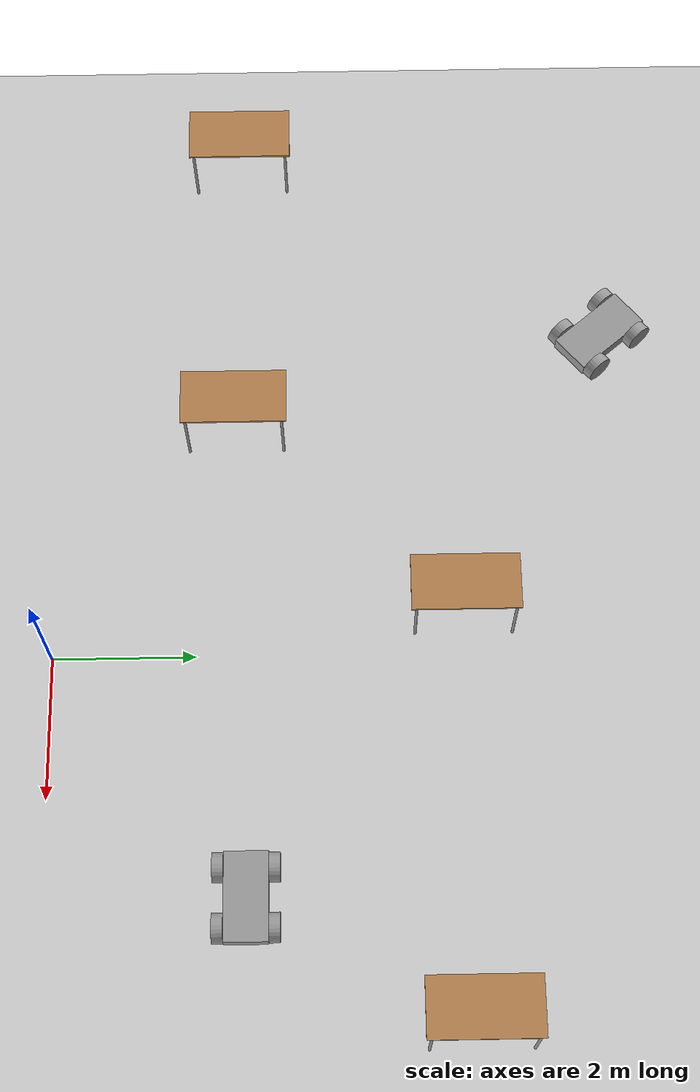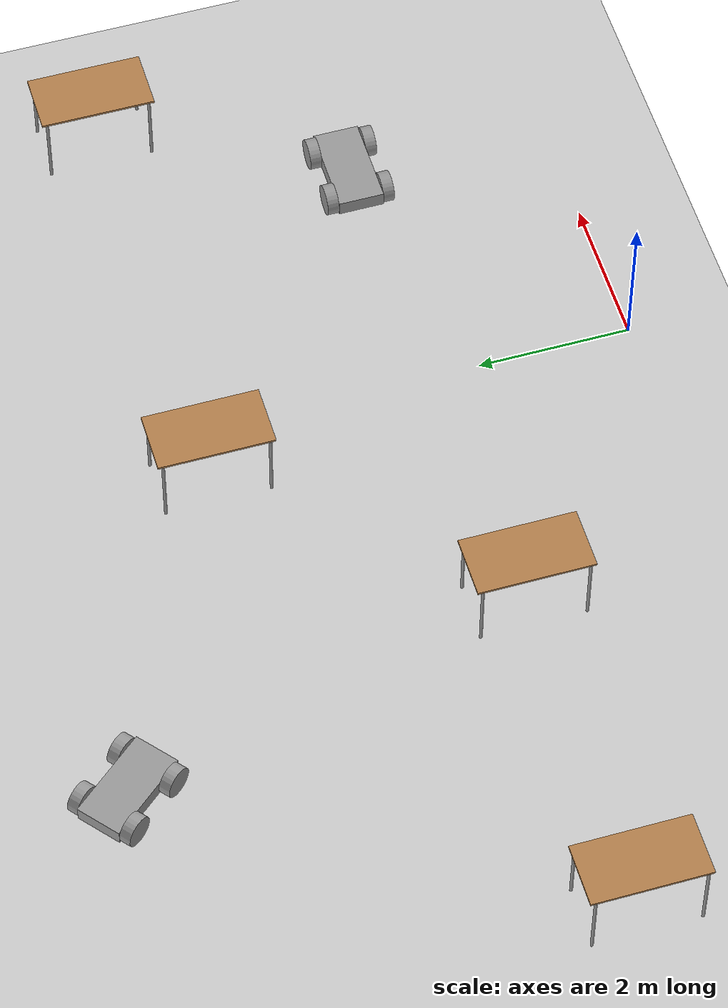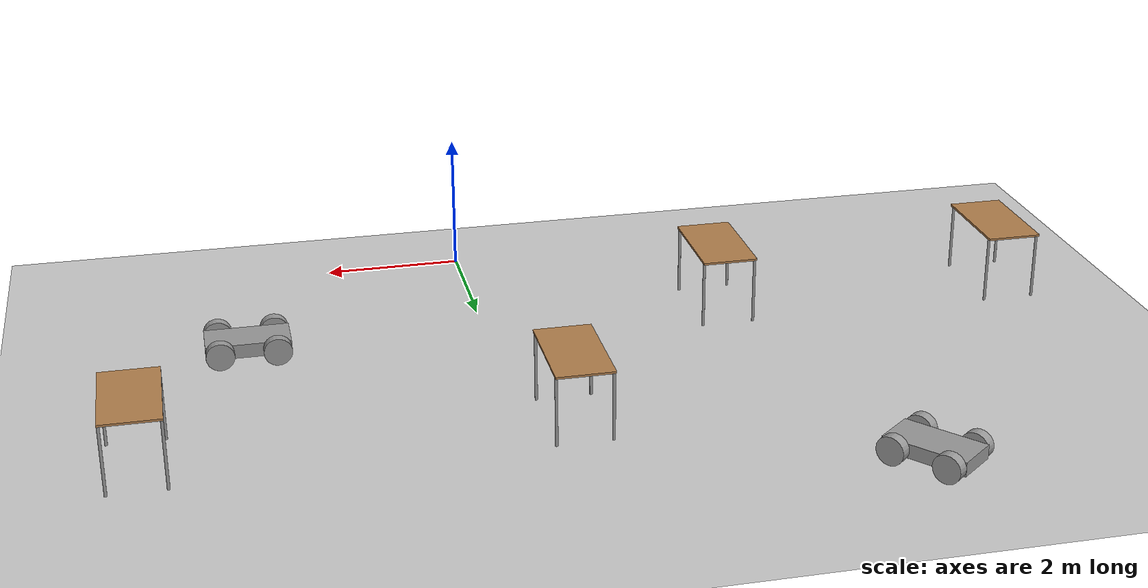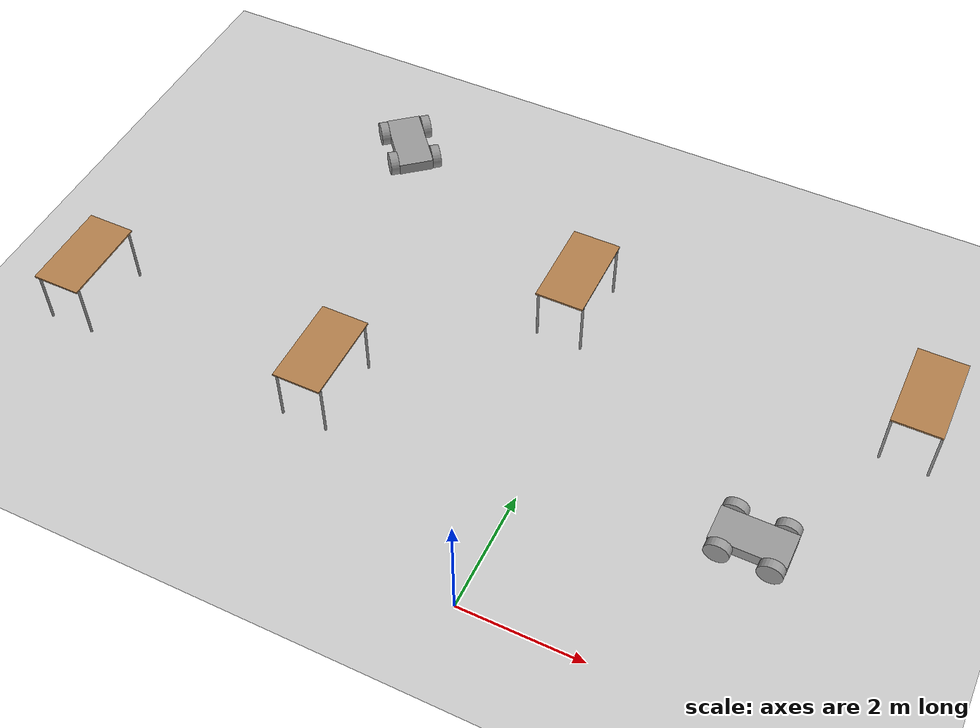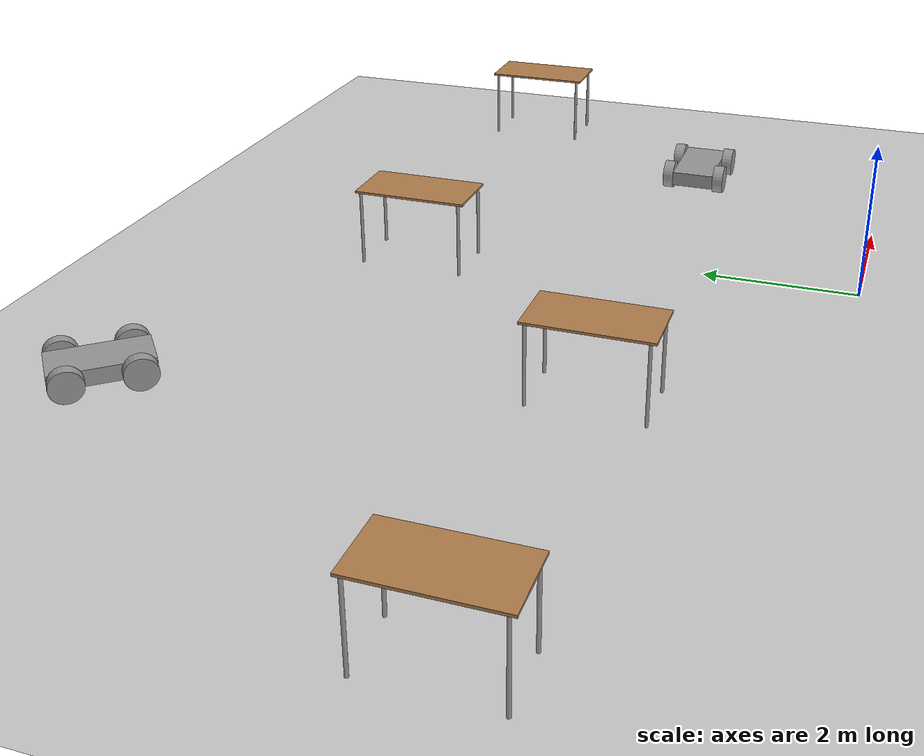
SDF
<sdf version="1.6">
 <world name="default">
  <model name="ground_plane">
   <static>1</static>
   <link name="link">
    <collision name="collision">
     <geometry><plane><normal>0 0 1</normal><size>100 100</size></plane></geometry>
     <surface>
      <contact><collide_bitmask>65535</collide_bitmask></contact>
      <friction><ode><mu>100</mu><mu2>50</mu2></ode></friction>
     </surface>
    </collision>
    <visual name="visual">
     <cast_shadows>0</cast_shadows>
     <geometry><plane><normal>0 0 1</normal><size>100 100</size></plane></geometry>
     <material>
      <script><uri>file://media/materials/scripts/gazebo.material</uri><name>Gazebo/Grey</name></script>
     </material>
    </visual>
   </link>
  </model>
  <model name="table">
   <static>1</static>
   <link name="link">
    <collision name="surface">
     <pose>0 0 1 0 -0 0</pose>
     <geometry><box><size>1.5 0.8 0.03</size></box></geometry>
     <surface><friction><ode><mu>0.6</mu><mu2>0.6</mu2></ode></friction></surface>
    </collision>
    <visual name="visual1">
     <pose>0 0 1 0 -0 0</pose>
     <geometry><box><size>1.5 0.8 0.03</size></box></geometry>
     <material>
      <script><uri>file://media/materials/scripts/gazebo.material</uri><name>Gazebo/Wood</name></script>
     </material>
    </visual>
    <collision name="front_left_leg">
     <pose>0.68 0.38 0.5 0 -0 0</pose>
     <geometry><cylinder><radius>0.02</radius><length>1</length></cylinder></geometry>
    </collision>
    <visual name="front_left_leg">
     <pose>0.68 0.38 0.5 0 -0 0</pose>
     <geometry><cylinder><radius>0.02</radius><length>1</length></cylinder></geometry>
     <material>
      <script><uri>file://media/materials/scripts/gazebo.material</uri><name>Gazebo/Grey</name></script>
     </material>
    </visual>
    <collision name="front_right_leg">
     <pose>0.68 -0.38 0.5 0 -0 0</pose>
     <geometry><cylinder><radius>0.02</radius><length>1</length></cylinder></geometry>
    </collision>
    <visual name="front_right_leg">
     <pose>0.68 -0.38 0.5 0 -0 0</pose>
     <geometry><cylinder><radius>0.02</radius><length>1</length></cylinder></geometry>
     <material>
      <script><uri>file://media/materials/scripts/gazebo.material</uri><name>Gazebo/Grey</name></script>
     </material>
    </visual>
    <collision name="back_right_leg">
     <pose>-0.68 -0.38 0.5 0 -0 0</pose>
     <geometry><cylinder><radius>0.02</radius><length>1</length></cylinder></geometry>
    </collision>
    <visual name="back_right_leg">
     <pose>-0.68 -0.38 0.5 0 -0 0</pose>
     <geometry><cylinder><radius>0.02</radius><length>1</length></cylinder></geometry>
     <material>
      <script><uri>file://media/materials/scripts/gazebo.material</uri><name>Gazebo/Grey</name></script>
     </material>
    </visual>
    <collision name="back_left_leg">
     <pose>-0.68 0.38 0.5 0 -0 0</pose>
     <geometry><cylinder><radius>0.02</radius><length>1</length></cylinder></geometry>
    </collision>
    <visual name="back_left_leg">
     <pose>-0.68 0.38 0.5 0 -0 0</pose>
     <geometry><cylinder><radius>0.02</radius><length>1</length></cylinder></geometry>
     <material>
      <script><uri>file://media/materials/scripts/gazebo.material</uri><name>Gazebo/Grey</name></script>
     </material>
    </visual>
   </link>
   <pose>4.98532 5.74806 0 0 -0 1.5708</pose>
  </model>
  <model name="table_0">
   <static>1</static>
   <link name="link">
    <collision name="surface">
     <pose>0 0 1 0 -0 0</pose>
     <geometry><box><size>1.5 0.8 0.03</size></box></geometry>
     <surface><friction><ode><mu>0.6</mu><mu2>0.6</mu2></ode></friction></surface>
    </collision>
    <visual name="visual1">
     <pose>0 0 1 0 -0 0</pose>
     <geometry><box><size>1.5 0.8 0.03</size></box></geometry>
     <material>
      <script><uri>file://media/materials/scripts/gazebo.material</uri><name>Gazebo/Wood</name></script>
     </material>
    </visual>
    <collision name="front_left_leg">
     <pose>0.68 0.38 0.5 0 -0 0</pose>
     <geometry><cylinder><radius>0.02</radius><length>1</length></cylinder></geometry>
    </collision>
    <visual name="front_left_leg">
     <pose>0.68 0.38 0.5 0 -0 0</pose>
     <geometry><cylinder><radius>0.02</radius><length>1</length></cylinder></geometry>
     <material>
      <script><uri>file://media/materials/scripts/gazebo.material</uri><name>Gazebo/Grey</name></script>
     </material>
    </visual>
    <collision name="front_right_leg">
     <pose>0.68 -0.38 0.5 0 -0 0</pose>
     <geometry><cylinder><radius>0.02</radius><length>1</length></cylinder></geometry>
    </collision>
    <visual name="front_right_leg">
     <pose>0.68 -0.38 0.5 0 -0 0</pose>
     <geometry><cylinder><radius>0.02</radius><length>1</length></cylinder></geometry>
     <material>
      <script><uri>file://media/materials/scripts/gazebo.material</uri><name>Gazebo/Grey</name></script>
     </material>
    </visual>
    <collision name="back_right_leg">
     <pose>-0.68 -0.38 0.5 0 -0 0</pose>
     <geometry><cylinder><radius>0.02</radius><length>1</length></cylinder></geometry>
    </collision>
    <visual name="back_right_leg">
     <pose>-0.68 -0.38 0.5 0 -0 0</pose>
     <geometry><cylinder><radius>0.02</radius><length>1</length></cylinder></geometry>
     <material>
      <script><uri>file://media/materials/scripts/gazebo.material</uri><name>Gazebo/Grey</name></script>
     </material>
    </visual>
    <collision name="back_left_leg">
     <pose>-0.68 0.38 0.5 0 -0 0</pose>
     <geometry><cylinder><radius>0.02</radius><length>1</length></cylinder></geometry>
    </collision>
    <visual name="back_left_leg">
     <pose>-0.68 0.38 0.5 0 -0 0</pose>
     <geometry><cylinder><radius>0.02</radius><length>1</length></cylinder></geometry>
     <material>
      <script><uri>file://media/materials/scripts/gazebo.material</uri><name>Gazebo/Grey</name></script>
     </material>
    </visual>
   </link>
   <pose>-0.681354 5.72212 0 0 -0 1.5708</pose>
  </model>
  <model name="robot">
   <link name="link_3">
    <pose>0 0 0.2 0 -0 0</pose>
    <inertial>
     <mass>1</mass>
     <inertia>
      <ixx>0.166667</ixx>
      <ixy>0</ixy>
      <ixz>0</ixz>
      <iyy>0.166667</iyy>
      <iyz>0</iyz>
      <izz>0.166667</izz>
     </inertia>
    </inertial>
    <visual name="visual">
     <geometry><box><size>1.2 0.6 0.2</size></box></geometry>
     <material>
      <lighting>1</lighting>
      <script><uri>file://media/materials/scripts/gazebo.material</uri><name>Gazebo/Grey</name></script>
      <shader type="pixel"><normal_map>__default__</normal_map></shader>
      <ambient>0.3 0.3 0.3 1</ambient>
      <diffuse>0.7 0.7 0.7 1</diffuse>
      <specular>0.01 0.01 0.01 1</specular>
      <emissive>0 0 0 1</emissive>
     </material>
    </visual>
    <collision name="collision">
     <geometry><box><size>1.2 0.6 0.2</size></box></geometry>
     <surface>
      <friction>
       <ode><mu>1</mu><mu2>1</mu2><fdir1>0 0 0</fdir1><slip1>0</slip1><slip2>0</slip2></ode>
       <torsional>
        <coefficient>1</coefficient>
        <patch_radius>0</patch_radius>
        <surface_radius>0</surface_radius>
        <use_patch_radius>1</use_patch_radius>
        <ode><slip>0</slip></ode>
       </torsional>
      </friction>
      <bounce><restitution_coefficient>0</restitution_coefficient><threshold>1e+06</threshold></bounce>
      <contact>
       <collide_without_contact>0</collide_without_contact>
       <collide_without_contact_bitmask>1</collide_without_contact_bitmask>
       <collide_bitmask>1</collide_bitmask>
       <ode>
        <soft_cfm>0</soft_cfm>
        <soft_erp>0.2</soft_erp>
        <kp>1e+13</kp>
        <kd>1</kd>
        <max_vel>0.01</max_vel>
        <min_depth>0</min_depth>
       </ode>
       <bullet>
        <split_impulse>1</split_impulse>
        <split_impulse_penetration_threshold>-0.01</split_impulse_penetration_threshold>
        <soft_cfm>0</soft_cfm>
        <soft_erp>0.2</soft_erp>
        <kp>1e+13</kp>
        <kd>1</kd>
       </bullet>
      </contact>
     </surface>
    </collision>
   </link>
   <link name="link_5_clone">
    <pose>-0.4 0.375001 0.2 1.5708 -0 0</pose>
    <inertial>
     <mass>1</mass>
     <inertia><ixx>0.145833</ixx><ixy>0</ixy><ixz>0</ixz><iyy>0.145833</iyy><iyz>0</iyz><izz>0.125</izz></inertia>
    </inertial>
    <visual name="visual">
     <geometry><cylinder><radius>0.2</radius><length>0.15</length></cylinder></geometry>
     <material>
      <lighting>1</lighting>
      <script><uri>file://media/materials/scripts/gazebo.material</uri><name>Gazebo/Grey</name></script>
      <shader type="pixel"><normal_map>__default__</normal_map></shader>
      <ambient>0.3 0.3 0.3 1</ambient>
      <diffuse>0.7 0.7 0.7 1</diffuse>
      <specular>0.01 0.01 0.01 1</specular>
      <emissive>0 0 0 1</emissive>
     </material>
    </visual>
    <collision name="collision">
     <geometry><cylinder><radius>0.2</radius><length>0.15</length></cylinder></geometry>
     <surface>
      <friction>
       <ode><mu>1</mu><mu2>1</mu2><fdir1>0 0 0</fdir1><slip1>0</slip1><slip2>0</slip2></ode>
       <torsional>
        <coefficient>1</coefficient>
        <patch_radius>0</patch_radius>
        <surface_radius>0</surface_radius>
        <use_patch_radius>1</use_patch_radius>
        <ode><slip>0</slip></ode>
       </torsional>
      </friction>
      <bounce><restitution_coefficient>0</restitution_coefficient><threshold>1e+06</threshold></bounce>
      <contact>
       <collide_without_contact>0</collide_without_contact>
       <collide_without_contact_bitmask>1</collide_without_contact_bitmask>
       <collide_bitmask>1</collide_bitmask>
       <ode>
        <soft_cfm>0</soft_cfm>
        <soft_erp>0.2</soft_erp>
        <kp>1e+13</kp>
        <kd>1</kd>
        <max_vel>0.01</max_vel>
        <min_depth>0</min_depth>
       </ode>
       <bullet>
        <split_impulse>1</split_impulse>
        <split_impulse_penetration_threshold>-0.01</split_impulse_penetration_threshold>
        <soft_cfm>0</soft_cfm>
        <soft_erp>0.2</soft_erp>
        <kp>1e+13</kp>
        <kd>1</kd>
       </bullet>
      </contact>
     </surface>
    </collision>
   </link>
   <link name="link_5_clone_0">
    <pose>-0.4 -0.375001 0.2 1.5708 -0 0</pose>
    <inertial>
     <mass>1</mass>
     <inertia><ixx>0.145833</ixx><ixy>0</ixy><ixz>0</ixz><iyy>0.145833</iyy><iyz>0</iyz><izz>0.125</izz></inertia>
    </inertial>
    <visual name="visual">
     <geometry><cylinder><radius>0.2</radius><length>0.15</length></cylinder></geometry>
     <material>
      <lighting>1</lighting>
      <script><uri>file://media/materials/scripts/gazebo.material</uri><name>Gazebo/Grey</name></script>
      <shader type="pixel"><normal_map>__default__</normal_map></shader>
      <ambient>0.3 0.3 0.3 1</ambient>
      <diffuse>0.7 0.7 0.7 1</diffuse>
      <specular>0.01 0.01 0.01 1</specular>
      <emissive>0 0 0 1</emissive>
     </material>
    </visual>
    <collision name="collision">
     <geometry><cylinder><radius>0.2</radius><length>0.15</length></cylinder></geometry>
     <surface>
      <friction>
       <ode><mu>1</mu><mu2>1</mu2><fdir1>0 0 0</fdir1><slip1>0</slip1><slip2>0</slip2></ode>
       <torsional>
        <coefficient>1</coefficient>
        <patch_radius>0</patch_radius>
        <surface_radius>0</surface_radius>
        <use_patch_radius>1</use_patch_radius>
        <ode><slip>0</slip></ode>
       </torsional>
      </friction>
      <bounce><restitution_coefficient>0</restitution_coefficient><threshold>1e+06</threshold></bounce>
      <contact>
       <collide_without_contact>0</collide_without_contact>
       <collide_without_contact_bitmask>1</collide_without_contact_bitmask>
       <collide_bitmask>1</collide_bitmask>
       <ode>
        <soft_cfm>0</soft_cfm>
        <soft_erp>0.2</soft_erp>
        <kp>1e+13</kp>
        <kd>1</kd>
        <max_vel>0.01</max_vel>
        <min_depth>0</min_depth>
       </ode>
       <bullet>
        <split_impulse>1</split_impulse>
        <split_impulse_penetration_threshold>-0.01</split_impulse_penetration_threshold>
        <soft_cfm>0</soft_cfm>
        <soft_erp>0.2</soft_erp>
        <kp>1e+13</kp>
        <kd>1</kd>
       </bullet>
      </contact>
     </surface>
    </collision>
   </link>
   <link name="link_5_clone_1">
    <pose>0.4 0.375001 0.2 1.5708 -0 0</pose>
    <inertial>
     <mass>1</mass>
     <inertia><ixx>0.145833</ixx><ixy>0</ixy><ixz>0</ixz><iyy>0.145833</iyy><iyz>0</iyz><izz>0.125</izz></inertia>
    </inertial>
    <visual name="visual">
     <geometry><cylinder><radius>0.2</radius><length>0.15</length></cylinder></geometry>
     <material>
      <lighting>1</lighting>
      <script><uri>file://media/materials/scripts/gazebo.material</uri><name>Gazebo/Grey</name></script>
      <shader type="pixel"><normal_map>__default__</normal_map></shader>
      <ambient>0.3 0.3 0.3 1</ambient>
      <diffuse>0.7 0.7 0.7 1</diffuse>
      <specular>0.01 0.01 0.01 1</specular>
      <emissive>0 0 0 1</emissive>
     </material>
    </visual>
    <collision name="collision">
     <geometry><cylinder><radius>0.2</radius><length>0.15</length></cylinder></geometry>
     <surface>
      <friction>
       <ode><mu>1</mu><mu2>1</mu2><fdir1>0 0 0</fdir1><slip1>0</slip1><slip2>0</slip2></ode>
       <torsional>
        <coefficient>1</coefficient>
        <patch_radius>0</patch_radius>
        <surface_radius>0</surface_radius>
        <use_patch_radius>1</use_patch_radius>
        <ode><slip>0</slip></ode>
       </torsional>
      </friction>
      <bounce><restitution_coefficient>0</restitution_coefficient><threshold>1e+06</threshold></bounce>
      <contact>
       <collide_without_contact>0</collide_without_contact>
       <collide_without_contact_bitmask>1</collide_without_contact_bitmask>
       <collide_bitmask>1</collide_bitmask>
       <ode>
        <soft_cfm>0</soft_cfm>
        <soft_erp>0.2</soft_erp>
        <kp>1e+13</kp>
        <kd>1</kd>
        <max_vel>0.01</max_vel>
        <min_depth>0</min_depth>
       </ode>
       <bullet>
        <split_impulse>1</split_impulse>
        <split_impulse_penetration_threshold>-0.01</split_impulse_penetration_threshold>
        <soft_cfm>0</soft_cfm>
        <soft_erp>0.2</soft_erp>
        <kp>1e+13</kp>
        <kd>1</kd>
       </bullet>
      </contact>
     </surface>
    </collision>
   </link>
   <link name="link_5_clone_2">
    <pose>0.4 -0.375001 0.2 1.5708 -0 0</pose>
    <inertial>
     <mass>1</mass>
     <inertia><ixx>0.145833</ixx><ixy>0</ixy><ixz>0</ixz><iyy>0.145833</iyy><iyz>0</iyz><izz>0.125</izz></inertia>
    </inertial>
    <visual name="visual">
     <geometry><cylinder><radius>0.2</radius><length>0.15</length></cylinder></geometry>
     <material>
      <lighting>1</lighting>
      <script><uri>file://media/materials/scripts/gazebo.material</uri><name>Gazebo/Grey</name></script>
      <shader type="pixel"><normal_map>__default__</normal_map></shader>
      <ambient>0.3 0.3 0.3 1</ambient>
      <diffuse>0.7 0.7 0.7 1</diffuse>
      <specular>0.01 0.01 0.01 1</specular>
      <emissive>0 0 0 1</emissive>
     </material>
    </visual>
    <collision name="collision">
     <geometry><cylinder><radius>0.2</radius><length>0.15</length></cylinder></geometry>
     <surface>
      <friction>
       <ode><mu>1</mu><mu2>1</mu2><fdir1>0 0 0</fdir1><slip1>0</slip1><slip2>0</slip2></ode>
       <torsional>
        <coefficient>1</coefficient>
        <patch_radius>0</patch_radius>
        <surface_radius>0</surface_radius>
        <use_patch_radius>1</use_patch_radius>
        <ode><slip>0</slip></ode>
       </torsional>
      </friction>
      <bounce><restitution_coefficient>0</restitution_coefficient><threshold>1e+06</threshold></bounce>
      <contact>
       <collide_without_contact>0</collide_without_contact>
       <collide_without_contact_bitmask>1</collide_without_contact_bitmask>
       <collide_bitmask>1</collide_bitmask>
       <ode>
        <soft_cfm>0</soft_cfm>
        <soft_erp>0.2</soft_erp>
        <kp>1e+13</kp>
        <kd>1</kd>
        <max_vel>0.01</max_vel>
        <min_depth>0</min_depth>
       </ode>
       <bullet>
        <split_impulse>1</split_impulse>
        <split_impulse_penetration_threshold>-0.01</split_impulse_penetration_threshold>
        <soft_cfm>0</soft_cfm>
        <soft_erp>0.2</soft_erp>
        <kp>1e+13</kp>
        <kd>1</kd>
       </bullet>
      </contact>
     </surface>
    </collision>
   </link>
   <joint name="link_3_JOINT_2" type="revolute">
    <parent>link_3</parent>
    <child>link_5_clone</child>
    <axis>
     <xyz>1 0 0</xyz>
     <use_parent_model_frame>0</use_parent_model_frame>
     <limit>
      <lower>-1.79769e+308</lower>
      <upper>1.79769e+308</upper>
      <effort>-1</effort>
      <velocity>-1</velocity>
     </limit>
     <dynamics>
      <spring_reference>0</spring_reference>
      <spring_stiffness>0</spring_stiffness>
      <damping>0</damping>
     </dynamics>
    </axis>
    <physics>
     <ode><limit><cfm>0</cfm><erp>0.2</erp></limit><suspension><cfm>0</cfm><erp>0.2</erp></suspension></ode>
    </physics>
   </joint>
   <joint name="link_3_JOINT_3" type="revolute">
    <parent>link_3</parent>
    <child>link_5_clone_0</child>
    <axis>
     <xyz>1 0 0</xyz>
     <use_parent_model_frame>0</use_parent_model_frame>
     <limit>
      <lower>-1.79769e+308</lower>
      <upper>1.79769e+308</upper>
      <effort>-1</effort>
      <velocity>-1</velocity>
     </limit>
     <dynamics>
      <spring_reference>0</spring_reference>
      <spring_stiffness>0</spring_stiffness>
      <damping>0</damping>
     </dynamics>
    </axis>
    <physics>
     <ode><limit><cfm>0</cfm><erp>0.2</erp></limit><suspension><cfm>0</cfm><erp>0.2</erp></suspension></ode>
    </physics>
   </joint>
   <joint name="link_3_JOINT_4" type="revolute">
    <parent>link_3</parent>
    <child>link_5_clone_1</child>
    <axis>
     <xyz>1 0 0</xyz>
     <use_parent_model_frame>0</use_parent_model_frame>
     <limit>
      <lower>-1.79769e+308</lower>
      <upper>1.79769e+308</upper>
      <effort>-1</effort>
      <velocity>-1</velocity>
     </limit>
     <dynamics>
      <spring_reference>0</spring_reference>
      <spring_stiffness>0</spring_stiffness>
      <damping>0</damping>
     </dynamics>
    </axis>
    <physics>
     <ode><limit><cfm>0</cfm><erp>0.2</erp></limit><suspension><cfm>0</cfm><erp>0.2</erp></suspension></ode>
    </physics>
   </joint>
   <joint name="link_3_JOINT_5" type="revolute">
    <parent>link_3</parent>
    <child>link_5_clone_2</child>
    <axis>
     <xyz>1 0 0</xyz>
     <use_parent_model_frame>0</use_parent_model_frame>
     <limit>
      <lower>-1.79769e+308</lower>
      <upper>1.79769e+308</upper>
      <effort>-1</effort>
      <velocity>-1</velocity>
     </limit>
     <dynamics>
      <spring_reference>0</spring_reference>
      <spring_stiffness>0</spring_stiffness>
      <damping>0</damping>
     </dynamics>
    </axis>
    <physics>
     <ode><limit><cfm>0</cfm><erp>0.2</erp></limit><suspension><cfm>0</cfm><erp>0.2</erp></suspension></ode>
    </physics>
   </joint>
   <static>0</static>
   <pose>-4.88928 7.88686 -6e-06 -1e-05 5e-06 -0.875028</pose>
  </model>
  <model name="robot_0">
   <link name="link_3">
    <pose>0 0 0.2 0 -0 0</pose>
    <inertial>
     <mass>1</mass>
     <inertia>
      <ixx>0.166667</ixx>
      <ixy>0</ixy>
      <ixz>0</ixz>
      <iyy>0.166667</iyy>
      <iyz>0</iyz>
      <izz>0.166667</izz>
     </inertia>
    </inertial>
    <visual name="visual">
     <geometry><box><size>1.2 0.6 0.2</size></box></geometry>
     <material>
      <lighting>1</lighting>
      <script><uri>file://media/materials/scripts/gazebo.material</uri><name>Gazebo/Grey</name></script>
      <shader type="pixel"><normal_map>__default__</normal_map></shader>
      <ambient>0.3 0.3 0.3 1</ambient>
      <diffuse>0.7 0.7 0.7 1</diffuse>
      <specular>0.01 0.01 0.01 1</specular>
      <emissive>0 0 0 1</emissive>
     </material>
    </visual>
    <collision name="collision">
     <geometry><box><size>1.2 0.6 0.2</size></box></geometry>
     <surface>
      <friction>
       <ode><mu>1</mu><mu2>1</mu2><fdir1>0 0 0</fdir1><slip1>0</slip1><slip2>0</slip2></ode>
       <torsional>
        <coefficient>1</coefficient>
        <patch_radius>0</patch_radius>
        <surface_radius>0</surface_radius>
        <use_patch_radius>1</use_patch_radius>
        <ode><slip>0</slip></ode>
       </torsional>
      </friction>
      <bounce><restitution_coefficient>0</restitution_coefficient><threshold>1e+06</threshold></bounce>
      <contact>
       <collide_without_contact>0</collide_without_contact>
       <collide_without_contact_bitmask>1</collide_without_contact_bitmask>
       <collide_bitmask>1</collide_bitmask>
       <ode>
        <soft_cfm>0</soft_cfm>
        <soft_erp>0.2</soft_erp>
        <kp>1e+13</kp>
        <kd>1</kd>
        <max_vel>0.01</max_vel>
        <min_depth>0</min_depth>
       </ode>
       <bullet>
        <split_impulse>1</split_impulse>
        <split_impulse_penetration_threshold>-0.01</split_impulse_penetration_threshold>
        <soft_cfm>0</soft_cfm>
        <soft_erp>0.2</soft_erp>
        <kp>1e+13</kp>
        <kd>1</kd>
       </bullet>
      </contact>
     </surface>
    </collision>
   </link>
   <link name="link_5_clone">
    <pose>-0.4 0.375001 0.2 1.5708 -0 0</pose>
    <inertial>
     <mass>1</mass>
     <inertia><ixx>0.145833</ixx><ixy>0</ixy><ixz>0</ixz><iyy>0.145833</iyy><iyz>0</iyz><izz>0.125</izz></inertia>
    </inertial>
    <visual name="visual">
     <geometry><cylinder><radius>0.2</radius><length>0.15</length></cylinder></geometry>
     <material>
      <lighting>1</lighting>
      <script><uri>file://media/materials/scripts/gazebo.material</uri><name>Gazebo/Grey</name></script>
      <shader type="pixel"><normal_map>__default__</normal_map></shader>
      <ambient>0.3 0.3 0.3 1</ambient>
      <diffuse>0.7 0.7 0.7 1</diffuse>
      <specular>0.01 0.01 0.01 1</specular>
      <emissive>0 0 0 1</emissive>
     </material>
    </visual>
    <collision name="collision">
     <geometry><cylinder><radius>0.2</radius><length>0.15</length></cylinder></geometry>
     <surface>
      <friction>
       <ode><mu>1</mu><mu2>1</mu2><fdir1>0 0 0</fdir1><slip1>0</slip1><slip2>0</slip2></ode>
       <torsional>
        <coefficient>1</coefficient>
        <patch_radius>0</patch_radius>
        <surface_radius>0</surface_radius>
        <use_patch_radius>1</use_patch_radius>
        <ode><slip>0</slip></ode>
       </torsional>
      </friction>
      <bounce><restitution_coefficient>0</restitution_coefficient><threshold>1e+06</threshold></bounce>
      <contact>
       <collide_without_contact>0</collide_without_contact>
       <collide_without_contact_bitmask>1</collide_without_contact_bitmask>
       <collide_bitmask>1</collide_bitmask>
       <ode>
        <soft_cfm>0</soft_cfm>
        <soft_erp>0.2</soft_erp>
        <kp>1e+13</kp>
        <kd>1</kd>
        <max_vel>0.01</max_vel>
        <min_depth>0</min_depth>
       </ode>
       <bullet>
        <split_impulse>1</split_impulse>
        <split_impulse_penetration_threshold>-0.01</split_impulse_penetration_threshold>
        <soft_cfm>0</soft_cfm>
        <soft_erp>0.2</soft_erp>
        <kp>1e+13</kp>
        <kd>1</kd>
       </bullet>
      </contact>
     </surface>
    </collision>
   </link>
   <link name="link_5_clone_0">
    <pose>-0.4 -0.375001 0.2 1.5708 -0 0</pose>
    <inertial>
     <mass>1</mass>
     <inertia><ixx>0.145833</ixx><ixy>0</ixy><ixz>0</ixz><iyy>0.145833</iyy><iyz>0</iyz><izz>0.125</izz></inertia>
    </inertial>
    <visual name="visual">
     <geometry><cylinder><radius>0.2</radius><length>0.15</length></cylinder></geometry>
     <material>
      <lighting>1</lighting>
      <script><uri>file://media/materials/scripts/gazebo.material</uri><name>Gazebo/Grey</name></script>
      <shader type="pixel"><normal_map>__default__</normal_map></shader>
      <ambient>0.3 0.3 0.3 1</ambient>
      <diffuse>0.7 0.7 0.7 1</diffuse>
      <specular>0.01 0.01 0.01 1</specular>
      <emissive>0 0 0 1</emissive>
     </material>
    </visual>
    <collision name="collision">
     <geometry><cylinder><radius>0.2</radius><length>0.15</length></cylinder></geometry>
     <surface>
      <friction>
       <ode><mu>1</mu><mu2>1</mu2><fdir1>0 0 0</fdir1><slip1>0</slip1><slip2>0</slip2></ode>
       <torsional>
        <coefficient>1</coefficient>
        <patch_radius>0</patch_radius>
        <surface_radius>0</surface_radius>
        <use_patch_radius>1</use_patch_radius>
        <ode><slip>0</slip></ode>
       </torsional>
      </friction>
      <bounce><restitution_coefficient>0</restitution_coefficient><threshold>1e+06</threshold></bounce>
      <contact>
       <collide_without_contact>0</collide_without_contact>
       <collide_without_contact_bitmask>1</collide_without_contact_bitmask>
       <collide_bitmask>1</collide_bitmask>
       <ode>
        <soft_cfm>0</soft_cfm>
        <soft_erp>0.2</soft_erp>
        <kp>1e+13</kp>
        <kd>1</kd>
        <max_vel>0.01</max_vel>
        <min_depth>0</min_depth>
       </ode>
       <bullet>
        <split_impulse>1</split_impulse>
        <split_impulse_penetration_threshold>-0.01</split_impulse_penetration_threshold>
        <soft_cfm>0</soft_cfm>
        <soft_erp>0.2</soft_erp>
        <kp>1e+13</kp>
        <kd>1</kd>
       </bullet>
      </contact>
     </surface>
    </collision>
   </link>
   <link name="link_5_clone_1">
    <pose>0.4 0.375001 0.2 1.5708 -0 0</pose>
    <inertial>
     <mass>1</mass>
     <inertia><ixx>0.145833</ixx><ixy>0</ixy><ixz>0</ixz><iyy>0.145833</iyy><iyz>0</iyz><izz>0.125</izz></inertia>
    </inertial>
    <visual name="visual">
     <geometry><cylinder><radius>0.2</radius><length>0.15</length></cylinder></geometry>
     <material>
      <lighting>1</lighting>
      <script><uri>file://media/materials/scripts/gazebo.material</uri><name>Gazebo/Grey</name></script>
      <shader type="pixel"><normal_map>__default__</normal_map></shader>
      <ambient>0.3 0.3 0.3 1</ambient>
      <diffuse>0.7 0.7 0.7 1</diffuse>
      <specular>0.01 0.01 0.01 1</specular>
      <emissive>0 0 0 1</emissive>
     </material>
    </visual>
    <collision name="collision">
     <geometry><cylinder><radius>0.2</radius><length>0.15</length></cylinder></geometry>
     <surface>
      <friction>
       <ode><mu>1</mu><mu2>1</mu2><fdir1>0 0 0</fdir1><slip1>0</slip1><slip2>0</slip2></ode>
       <torsional>
        <coefficient>1</coefficient>
        <patch_radius>0</patch_radius>
        <surface_radius>0</surface_radius>
        <use_patch_radius>1</use_patch_radius>
        <ode><slip>0</slip></ode>
       </torsional>
      </friction>
      <bounce><restitution_coefficient>0</restitution_coefficient><threshold>1e+06</threshold></bounce>
      <contact>
       <collide_without_contact>0</collide_without_contact>
       <collide_without_contact_bitmask>1</collide_without_contact_bitmask>
       <collide_bitmask>1</collide_bitmask>
       <ode>
        <soft_cfm>0</soft_cfm>
        <soft_erp>0.2</soft_erp>
        <kp>1e+13</kp>
        <kd>1</kd>
        <max_vel>0.01</max_vel>
        <min_depth>0</min_depth>
       </ode>
       <bullet>
        <split_impulse>1</split_impulse>
        <split_impulse_penetration_threshold>-0.01</split_impulse_penetration_threshold>
        <soft_cfm>0</soft_cfm>
        <soft_erp>0.2</soft_erp>
        <kp>1e+13</kp>
        <kd>1</kd>
       </bullet>
      </contact>
     </surface>
    </collision>
   </link>
   <link name="link_5_clone_2">
    <pose>0.4 -0.375001 0.2 1.5708 -0 0</pose>
    <inertial>
     <mass>1</mass>
     <inertia><ixx>0.145833</ixx><ixy>0</ixy><ixz>0</ixz><iyy>0.145833</iyy><iyz>0</iyz><izz>0.125</izz></inertia>
    </inertial>
    <visual name="visual">
     <geometry><cylinder><radius>0.2</radius><length>0.15</length></cylinder></geometry>
     <material>
      <lighting>1</lighting>
      <script><uri>file://media/materials/scripts/gazebo.material</uri><name>Gazebo/Grey</name></script>
      <shader type="pixel"><normal_map>__default__</normal_map></shader>
      <ambient>0.3 0.3 0.3 1</ambient>
      <diffuse>0.7 0.7 0.7 1</diffuse>
      <specular>0.01 0.01 0.01 1</specular>
      <emissive>0 0 0 1</emissive>
     </material>
    </visual>
    <collision name="collision">
     <geometry><cylinder><radius>0.2</radius><length>0.15</length></cylinder></geometry>
     <surface>
      <friction>
       <ode><mu>1</mu><mu2>1</mu2><fdir1>0 0 0</fdir1><slip1>0</slip1><slip2>0</slip2></ode>
       <torsional>
        <coefficient>1</coefficient>
        <patch_radius>0</patch_radius>
        <surface_radius>0</surface_radius>
        <use_patch_radius>1</use_patch_radius>
        <ode><slip>0</slip></ode>
       </torsional>
      </friction>
      <bounce><restitution_coefficient>0</restitution_coefficient><threshold>1e+06</threshold></bounce>
      <contact>
       <collide_without_contact>0</collide_without_contact>
       <collide_without_contact_bitmask>1</collide_without_contact_bitmask>
       <collide_bitmask>1</collide_bitmask>
       <ode>
        <soft_cfm>0</soft_cfm>
        <soft_erp>0.2</soft_erp>
        <kp>1e+13</kp>
        <kd>1</kd>
        <max_vel>0.01</max_vel>
        <min_depth>0</min_depth>
       </ode>
       <bullet>
        <split_impulse>1</split_impulse>
        <split_impulse_penetration_threshold>-0.01</split_impulse_penetration_threshold>
        <soft_cfm>0</soft_cfm>
        <soft_erp>0.2</soft_erp>
        <kp>1e+13</kp>
        <kd>1</kd>
       </bullet>
      </contact>
     </surface>
    </collision>
   </link>
   <joint name="link_3_JOINT_2" type="revolute">
    <parent>link_3</parent>
    <child>link_5_clone</child>
    <axis>
     <xyz>1 0 0</xyz>
     <use_parent_model_frame>0</use_parent_model_frame>
     <limit>
      <lower>-1.79769e+308</lower>
      <upper>1.79769e+308</upper>
      <effort>-1</effort>
      <velocity>-1</velocity>
     </limit>
     <dynamics>
      <spring_reference>0</spring_reference>
      <spring_stiffness>0</spring_stiffness>
      <damping>0</damping>
     </dynamics>
    </axis>
    <physics>
     <ode><limit><cfm>0</cfm><erp>0.2</erp></limit><suspension><cfm>0</cfm><erp>0.2</erp></suspension></ode>
    </physics>
   </joint>
   <joint name="link_3_JOINT_3" type="revolute">
    <parent>link_3</parent>
    <child>link_5_clone_0</child>
    <axis>
     <xyz>1 0 0</xyz>
     <use_parent_model_frame>0</use_parent_model_frame>
     <limit>
      <lower>-1.79769e+308</lower>
      <upper>1.79769e+308</upper>
      <effort>-1</effort>
      <velocity>-1</velocity>
     </limit>
     <dynamics>
      <spring_reference>0</spring_reference>
      <spring_stiffness>0</spring_stiffness>
      <damping>0</damping>
     </dynamics>
    </axis>
    <physics>
     <ode><limit><cfm>0</cfm><erp>0.2</erp></limit><suspension><cfm>0</cfm><erp>0.2</erp></suspension></ode>
    </physics>
   </joint>
   <joint name="link_3_JOINT_4" type="revolute">
    <parent>link_3</parent>
    <child>link_5_clone_1</child>
    <axis>
     <xyz>1 0 0</xyz>
     <use_parent_model_frame>0</use_parent_model_frame>
     <limit>
      <lower>-1.79769e+308</lower>
      <upper>1.79769e+308</upper>
      <effort>-1</effort>
      <velocity>-1</velocity>
     </limit>
     <dynamics>
      <spring_reference>0</spring_reference>
      <spring_stiffness>0</spring_stiffness>
      <damping>0</damping>
     </dynamics>
    </axis>
    <physics>
     <ode><limit><cfm>0</cfm><erp>0.2</erp></limit><suspension><cfm>0</cfm><erp>0.2</erp></suspension></ode>
    </physics>
   </joint>
   <joint name="link_3_JOINT_5" type="revolute">
    <parent>link_3</parent>
    <child>link_5_clone_2</child>
    <axis>
     <xyz>1 0 0</xyz>
     <use_parent_model_frame>0</use_parent_model_frame>
     <limit>
      <lower>-1.79769e+308</lower>
      <upper>1.79769e+308</upper>
      <effort>-1</effort>
      <velocity>-1</velocity>
     </limit>
     <dynamics>
      <spring_reference>0</spring_reference>
      <spring_stiffness>0</spring_stiffness>
      <damping>0</damping>
     </dynamics>
    </axis>
    <physics>
     <ode><limit><cfm>0</cfm><erp>0.2</erp></limit><suspension><cfm>0</cfm><erp>0.2</erp></suspension></ode>
    </physics>
   </joint>
   <static>0</static>
   <pose>3.4053 2.71957 0 0 -0 0.000101</pose>
  </model>
  <model name="table_clone_1">
   <static>1</static>
   <link name="link">
    <collision name="surface">
     <pose>0 0 1 0 -0 0</pose>
     <geometry><box><size>1.5 0.8 0.03</size></box></geometry>
     <surface><friction><ode><mu>0.6</mu><mu2>0.6</mu2></ode></friction></surface>
    </collision>
    <visual name="visual1">
     <pose>0 0 1 0 -0 0</pose>
     <geometry><box><size>1.5 0.8 0.03</size></box></geometry>
     <material>
      <script><uri>file://media/materials/scripts/gazebo.material</uri><name>Gazebo/Wood</name></script>
     </material>
    </visual>
    <collision name="front_left_leg">
     <pose>0.68 0.38 0.5 0 -0 0</pose>
     <geometry><cylinder><radius>0.02</radius><length>1</length></cylinder></geometry>
    </collision>
    <visual name="front_left_leg">
     <pose>0.68 0.38 0.5 0 -0 0</pose>
     <geometry><cylinder><radius>0.02</radius><length>1</length></cylinder></geometry>
     <material>
      <script><uri>file://media/materials/scripts/gazebo.material</uri><name>Gazebo/Grey</name></script>
     </material>
    </visual>
    <collision name="front_right_leg">
     <pose>0.68 -0.38 0.5 0 -0 0</pose>
     <geometry><cylinder><radius>0.02</radius><length>1</length></cylinder></geometry>
    </collision>
    <visual name="front_right_leg">
     <pose>0.68 -0.38 0.5 0 -0 0</pose>
     <geometry><cylinder><radius>0.02</radius><length>1</length></cylinder></geometry>
     <material>
      <script><uri>file://media/materials/scripts/gazebo.material</uri><name>Gazebo/Grey</name></script>
     </material>
    </visual>
    <collision name="back_right_leg">
     <pose>-0.68 -0.38 0.5 0 -0 0</pose>
     <geometry><cylinder><radius>0.02</radius><length>1</length></cylinder></geometry>
    </collision>
    <visual name="back_right_leg">
     <pose>-0.68 -0.38 0.5 0 -0 0</pose>
     <geometry><cylinder><radius>0.02</radius><length>1</length></cylinder></geometry>
     <material>
      <script><uri>file://media/materials/scripts/gazebo.material</uri><name>Gazebo/Grey</name></script>
     </material>
    </visual>
    <collision name="back_left_leg">
     <pose>-0.68 0.38 0.5 0 -0 0</pose>
     <geometry><cylinder><radius>0.02</radius><length>1</length></cylinder></geometry>
    </collision>
    <visual name="back_left_leg">
     <pose>-0.68 0.38 0.5 0 -0 0</pose>
     <geometry><cylinder><radius>0.02</radius><length>1</length></cylinder></geometry>
     <material>
      <script><uri>file://media/materials/scripts/gazebo.material</uri><name>Gazebo/Grey</name></script>
     </material>
    </visual>
   </link>
   <pose>-3.53652 2.54159 0 0 -0 1.5708</pose>
  </model>
  <model name="table_clone_2">
   <static>1</static>
   <link name="link">
    <collision name="surface">
     <pose>0 0 1 0 -0 0</pose>
     <geometry><box><size>1.5 0.8 0.03</size></box></geometry>
     <surface><friction><ode><mu>0.6</mu><mu2>0.6</mu2></ode></friction></surface>
    </collision>
    <visual name="visual1">
     <pose>0 0 1 0 -0 0</pose>
     <geometry><box><size>1.5 0.8 0.03</size></box></geometry>
     <material>
      <script><uri>file://media/materials/scripts/gazebo.material</uri><name>Gazebo/Wood</name></script>
     </material>
    </visual>
    <collision name="front_left_leg">
     <pose>0.68 0.38 0.5 0 -0 0</pose>
     <geometry><cylinder><radius>0.02</radius><length>1</length></cylinder></geometry>
    </collision>
    <visual name="front_left_leg">
     <pose>0.68 0.38 0.5 0 -0 0</pose>
     <geometry><cylinder><radius>0.02</radius><length>1</length></cylinder></geometry>
     <material>
      <script><uri>file://media/materials/scripts/gazebo.material</uri><name>Gazebo/Grey</name></script>
     </material>
    </visual>
    <collision name="front_right_leg">
     <pose>0.68 -0.38 0.5 0 -0 0</pose>
     <geometry><cylinder><radius>0.02</radius><length>1</length></cylinder></geometry>
    </collision>
    <visual name="front_right_leg">
     <pose>0.68 -0.38 0.5 0 -0 0</pose>
     <geometry><cylinder><radius>0.02</radius><length>1</length></cylinder></geometry>
     <material>
      <script><uri>file://media/materials/scripts/gazebo.material</uri><name>Gazebo/Grey</name></script>
     </material>
    </visual>
    <collision name="back_right_leg">
     <pose>-0.68 -0.38 0.5 0 -0 0</pose>
     <geometry><cylinder><radius>0.02</radius><length>1</length></cylinder></geometry>
    </collision>
    <visual name="back_right_leg">
     <pose>-0.68 -0.38 0.5 0 -0 0</pose>
     <geometry><cylinder><radius>0.02</radius><length>1</length></cylinder></geometry>
     <material>
      <script><uri>file://media/materials/scripts/gazebo.material</uri><name>Gazebo/Grey</name></script>
     </material>
    </visual>
    <collision name="back_left_leg">
     <pose>-0.68 0.38 0.5 0 -0 0</pose>
     <geometry><cylinder><radius>0.02</radius><length>1</length></cylinder></geometry>
    </collision>
    <visual name="back_left_leg">
     <pose>-0.68 0.38 0.5 0 -0 0</pose>
     <geometry><cylinder><radius>0.02</radius><length>1</length></cylinder></geometry>
     <material>
      <script><uri>file://media/materials/scripts/gazebo.material</uri><name>Gazebo/Grey</name></script>
     </material>
    </visual>
   </link>
   <pose>-7.93604 2.59728 0 0 -0 1.5708</pose>
  </model>
 </world>
</sdf>
